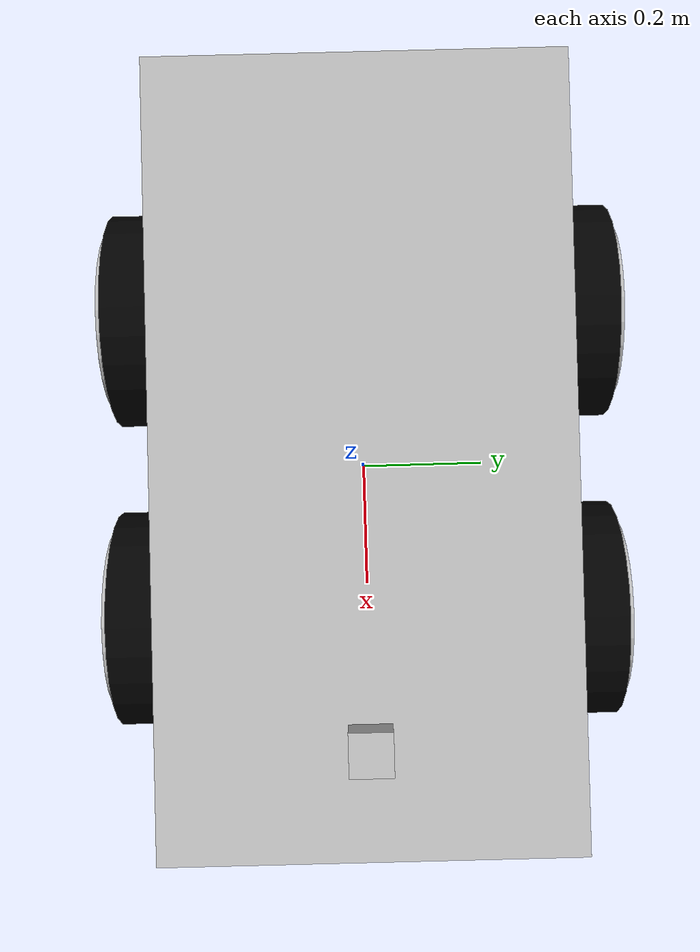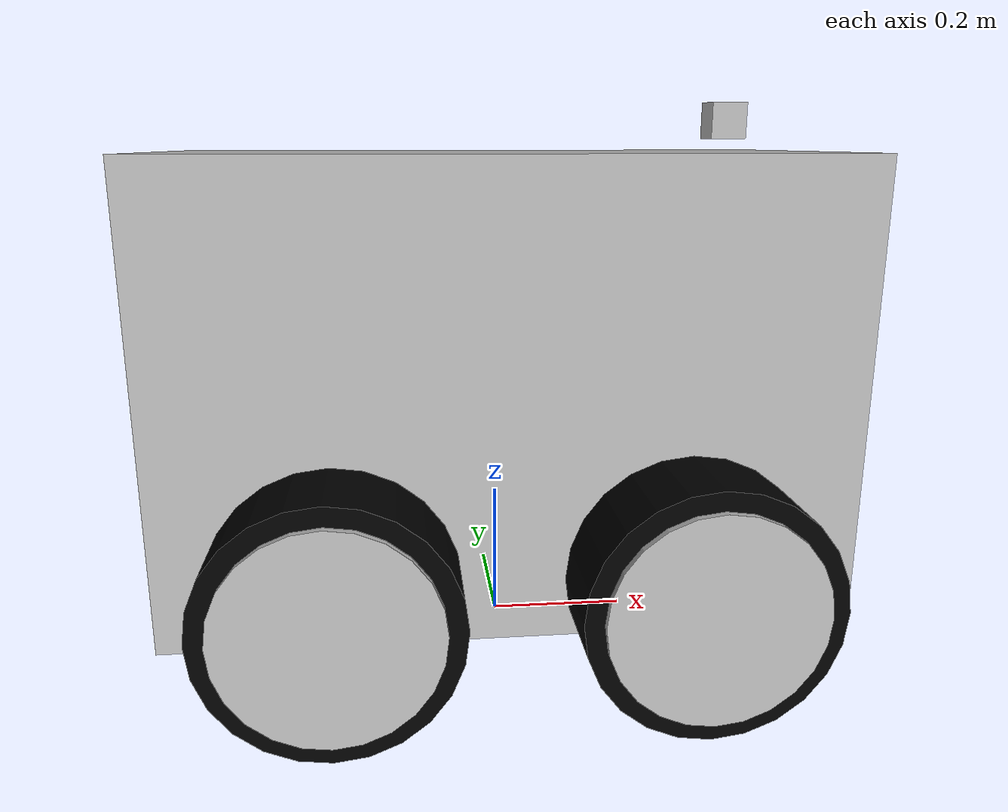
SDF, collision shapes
<?xml version='1.0'?>
<sdf version='1.4'>
   <model name="yeti_spinners">
    <static>false</static>
	<include>
	  <uri>model://yeti</uri>
	  <name>yeti_body</name>
	</include>
    <link name='left_back_spinner'>

      <pose>-0.233 0.385 0.165 0 1.5707 1.5707</pose>
      <collision name='collision'>
        <geometry>
          <cylinder>
            <radius>.14</radius>
            <length>.01</length>
          </cylinder>
        </geometry>
      </collision>

      <visual name='visual'>
        <pose>-0.1 -.15 -.01 0 0 0</pose>
        <geometry>
          <mesh>
            <uri>model://yeti/meshes/spinners.dae</uri>
          </mesh>
        </geometry>
      </visual>

    </link>

    <joint type='revolute' name='left_back_spinner_hinge'>
      <pose>0 0 .065 0 0 0</pose>
      <child>yeti_body::left_back_wheel</child>
      <parent>left_back_spinner</parent>
      <axis>
        <xyz>0 1 0</xyz>
      </axis>
    </joint>

    <link name='right_back_spinner'>

      <pose>-0.233 -0.385 0.165 0 1.5707 1.5707</pose>
      <collision name='collision'>
        <geometry>
          <cylinder>
            <radius>.14</radius>
            <length>.01</length>
          </cylinder>
        </geometry>
      </collision>

      <visual name='visual'>
        <pose>-0.1 -.15 -.01 0 0 0</pose>
        <geometry>
          <mesh>
            <uri>model://yeti/meshes/spinners.dae</uri>
          </mesh>
        </geometry>
      </visual>

    </link>

    <joint type='revolute' name='right_back_spinner_hinge'>
      <pose>0 0 -.065 0 0 0</pose>
      <child>yeti_body::right_back_wheel</child>
      <parent>right_back_spinner</parent>
      <axis>
        <xyz>0 1 0</xyz>
      </axis>
    </joint>

    <link name='right_front_spinner'>

      <pose>0.233 -0.385 0.165 0 1.5707 1.5707</pose>
      <collision name='collision'>
        <geometry>
          <cylinder>
            <radius>.14</radius>
            <length>.01</length>
          </cylinder>
        </geometry>
      </collision>

      <visual name='visual'>
        <pose>-0.1 -.15 -.01 0 0 0</pose>
        <geometry>
          <mesh>
            <uri>model://yeti/meshes/spinners.dae</uri>
          </mesh>
        </geometry>
      </visual>

    </link>

    <joint type='revolute' name='right_front_spinner_hinge'>
      <pose>0 0 -.065 0 0 0</pose>
      <child>yeti_body::right_front_wheel</child>
      <parent>right_front_spinner</parent>
      <axis>
        <xyz>0 1 0</xyz>
      </axis>
    </joint>

    <link name='left_front_spinner'>

      <pose>0.233 0.385 0.165 0 1.5707 1.5707</pose>
      <collision name='collision'>
        <geometry>
          <cylinder>
            <radius>.14</radius>
            <length>.01</length>
          </cylinder>
        </geometry>
      </collision>

      <visual name='visual'>
        <pose>-0.1 -.15 -.01 0 0 0</pose>
        <geometry>
          <mesh>
            <uri>model://yeti/meshes/spinners.dae</uri>
          </mesh>
        </geometry>
      </visual>

    </link>

    <joint type='revolute' name='left_front_spinner_hinge'>
      <pose>0 0 .065 0 0 0</pose>
      <child>yeti_body::left_front_wheel</child>
      <parent>left_front_spinner</parent>
      <axis>
        <xyz>0 1 0</xyz>
      </axis>
    </joint>
  </model>
</sdf>

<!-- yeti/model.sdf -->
<sdf version='1.4'>
  <model name="yeti">
    <static>false</static>
    <link name='chassis'>
      <inertial>
        <mass>136.0</mass>
      </inertial>
      <pose>0 0 0.395 0 0 0</pose>
      <collision name='collision'>
        <geometry>
          <box>
            <size> .93 .495 .625 </size>
          </box>
        </geometry>
      </collision>
      <visual name='visual'>
        <pose>.52 -0.247 -.32 0 0 0</pose>
        <geometry>
          <mesh>
            <uri>model://yeti/meshes/chassis.dae</uri>
          </mesh>
        </geometry>
      </visual>
    </link>
    <link name='left_front_wheel'>
      <pose>0.233 0.315 0.165 0 1.5707 1.5707</pose>
      <collision name='collision'>
        <geometry>
          <cylinder>
            <radius>.165</radius>
            <length>.13</length>
          </cylinder>
        </geometry>
        <surface>
          <friction>
            <ode>
              <mu>0.9</mu>
              <mu2>0.9</mu2>
            </ode>
          </friction>
        </surface>
      </collision>
      <visual name='visual'>
        <geometry>
          <cylinder>
            <radius>.165</radius>
            <length>.13</length>
          </cylinder>
        </geometry>
        <material>
          <ambient>0.0 0.0 0.0 1.0</ambient>
          <diffuse>0.0 0.0 0.0 1.00</diffuse>
          <specular>0.0 0.0 0.0 1.0</specular>
          <emissive>0.0 0.0 0.0 1.0</emissive>
        </material>
      </visual>
    </link>
    <link name='right_front_wheel'>
      <pose>0.233 -0.315 0.165 0 1.5707 1.5707</pose>
      <collision name='collision'>
        <geometry>
          <cylinder>
            <radius>.165</radius>
            <length>.13</length>
          </cylinder>
        </geometry>
        <surface>
          <friction>
            <ode>
              <mu>0.9</mu>
              <mu2>0.9</mu2>
            </ode>
          </friction>
        </surface>
      </collision>
      <visual name='visual'>
        <geometry>
          <cylinder>
            <radius>.165</radius>
            <length>.13</length>
          </cylinder>
        </geometry>
        <material>
          <ambient>0.0 0.0 0.0 1.0</ambient>
          <diffuse>0.0 0.0 0.0 1.00</diffuse>
          <specular>0.0 0.0 0.0 1.0</specular>
          <emissive>0.0 0.0 0.0 1.0</emissive>
        </material>
      </visual>
    </link>
    <link name='left_back_wheel'>
      <pose>-0.233 0.315 0.165 0 1.5707 1.5707</pose>
      <collision name='collision'>
        <geometry>
          <cylinder>
            <radius>.165</radius>
            <length>.13</length>
          </cylinder>
        </geometry>
        <surface>
          <friction>
            <ode>
              <mu>0.9</mu>
              <mu2>0.9</mu2>
            </ode>
          </friction>
        </surface>
      </collision>
      <visual name='visual'>
        <geometry>
          <cylinder>
            <radius>.165</radius>
            <length>.13</length>
          </cylinder>
        </geometry>
        <material>
          <ambient>0.0 0.0 0.0 1.0</ambient>
          <diffuse>0.0 0.0 0.0 1.00</diffuse>
          <specular>0.0 0.0 0.0 1.0</specular>
          <emissive>0.0 0.0 0.0 1.0</emissive>
        </material>
      </visual>
    </link>
    <link name='right_back_wheel'>
      <pose>-0.233 -0.315 0.165 0 1.5707 1.5707</pose>
      <collision name='collision'>
        <geometry>
          <cylinder>
            <radius>.165</radius>
            <length>.13</length>
          </cylinder>
        </geometry>
        <surface>
          <friction>
            <ode>
              <mu>0.9</mu>
              <mu2>0.9</mu2>
            </ode>
          </friction>
        </surface>
      </collision>
      <visual name='visual'>
        <geometry>
          <cylinder>
            <radius>.165</radius>
            <length>.13</length>
          </cylinder>
        </geometry>
        <material>
          <ambient>0.0 0.0 0.0 1.0</ambient>
          <diffuse>0.0 0.0 0.0 1.00</diffuse>
          <specular>0.0 0.0 0.0 1.0</specular>
          <emissive>0.0 0.0 0.0 1.0</emissive>
        </material>
      </visual>
    </link>
    <link name="lidar">
      <pose>0.33 0 0.75 0 0 0</pose>
      <collision name='collision'>
        <geometry>
          <box>
            <size>0.05 0.05 0.05</size>
          </box>
        </geometry>
      </collision>
      <inertial name='inertial'>
        <mass value="1e-5" />
        <origin xyz="0 0 0" rpy="0 0 0"/>
        <inertia ixx="1e-6" ixy="0" ixz="0" iyy="1e-6" iyz="0" izz="1e-6" />
      </inertial>
      <sensor type="ray" name="head_sick_sensor">
        <pose>0 0 0 0 0 0</pose>
        <visualize>false</visualize>
        <update_rate>40</update_rate>
        <ray>
          <scan>
            <horizontal>
              <samples>720</samples>
              <resolution>1</resolution>
              <min_angle>-2.356</min_angle>
              <max_angle>2.356</max_angle>
            </horizontal>
          </scan>
          <range>
            <min>0.10</min>
            <max>30.0</max>
            <resolution>0.01</resolution>
          </range>
          <noise>
            <type>gaussian</type>
            <mean>0.0</mean>
            <stddev>0.001</stddev>
          </noise>
        </ray>
        <plugin name="gazebo_ros_head_sick_controller" filename="libgazebo_ros_laser.so">
          <topicName>/os1_cloud_node/scan</topicName>
          <frameName>os1_sensor</frameName>
        </plugin>
      </sensor>
    </link>
    <joint type='revolute' name='left_front_wheel_hinge'>
      <pose>0 0 -0.065 0 0 0</pose>
      <child>left_front_wheel</child>
      <parent>chassis</parent>
      <axis>
        <xyz>0 1 0</xyz>
      </axis>
    </joint>
    <joint type='revolute' name='right_front_wheel_hinge'>
      <pose>0 0 0.065 0 0 0</pose>
      <child>right_front_wheel</child>
      <parent>chassis</parent>
      <axis>
        <xyz>0 1 0</xyz>
      </axis>
    </joint>
    <joint type='revolute' name='left_back_wheel_hinge'>
      <pose>0 0 -0.065 0 0 0</pose>
      <child>left_back_wheel</child>
      <parent>chassis</parent>
      <axis>
        <xyz>0 1 0</xyz>
      </axis>
    </joint>
    <joint type='revolute' name='right_back_wheel_hinge'>
      <pose>0 0 0.065 0 0 0</pose>
      <child>right_back_wheel</child>
      <parent>chassis</parent>
      <axis>
        <xyz>0 1 0</xyz>
      </axis>
    </joint>
    <joint type='fixed' name='lidar_fixed'>
      <child>chassis</child>
      <parent>lidar</parent>
    </joint>
    <plugin name="skid_steer_drive_controller" filename="libgazebo_ros_skid_steer_drive.so">
      <updateRate>100.0</updateRate>
      <robotNamespace>/yeti</robotNamespace>
      <leftFrontJoint>left_front_wheel_hinge</leftFrontJoint>
      <rightFrontJoint>right_front_wheel_hinge</rightFrontJoint>
      <leftRearJoint>left_back_wheel_hinge</leftRearJoint>
      <rightRearJoint>right_back_wheel_hinge</rightRearJoint>
      <wheelSeparation>0.495</wheelSeparation>
      <wheelDiameter>0.33</wheelDiameter>
      <robotBaseFrame>base_link</robotBaseFrame>
      <torque>60</torque>
      <topicName>cmd_vel</topicName>
      <broadcastTF>true</broadcastTF>
    </plugin>
  </model>
</sdf>
